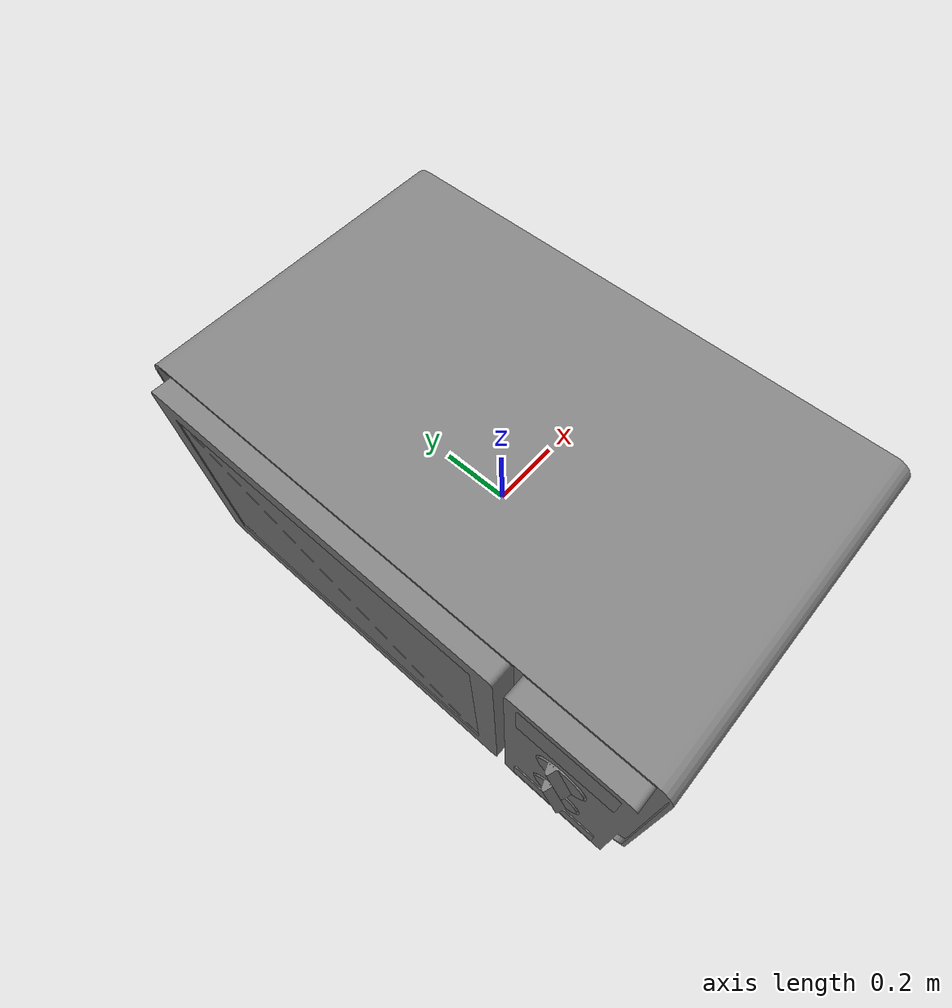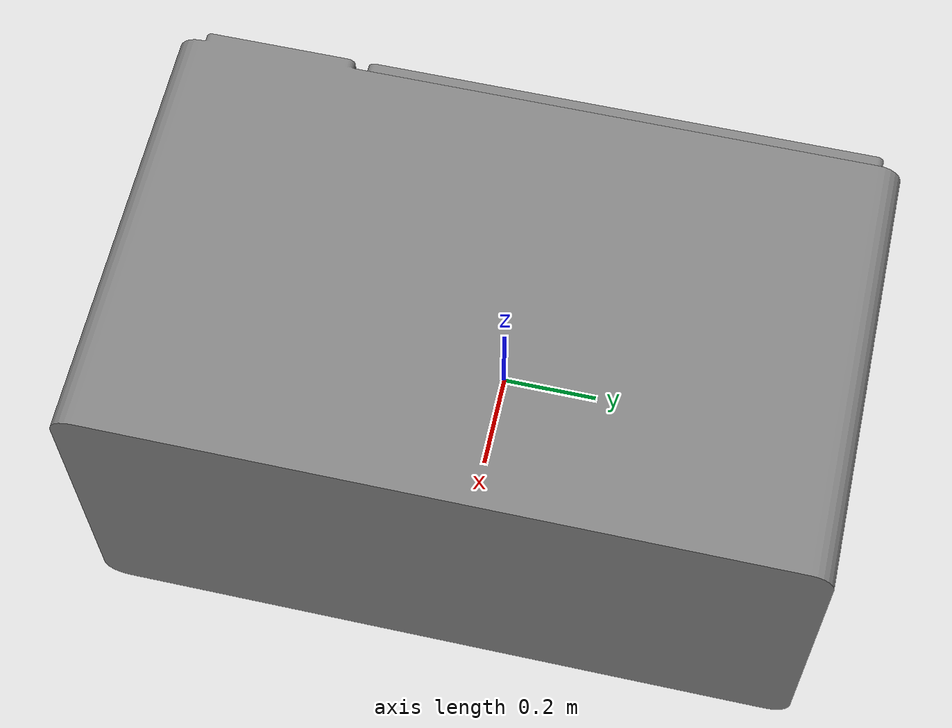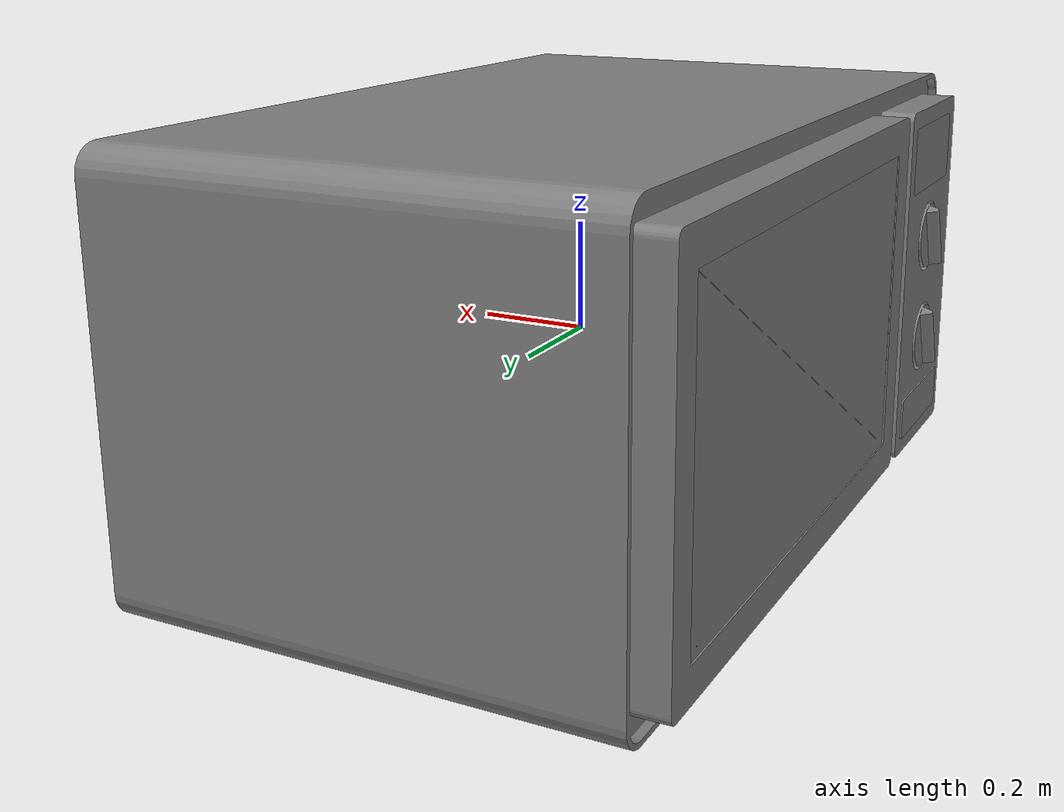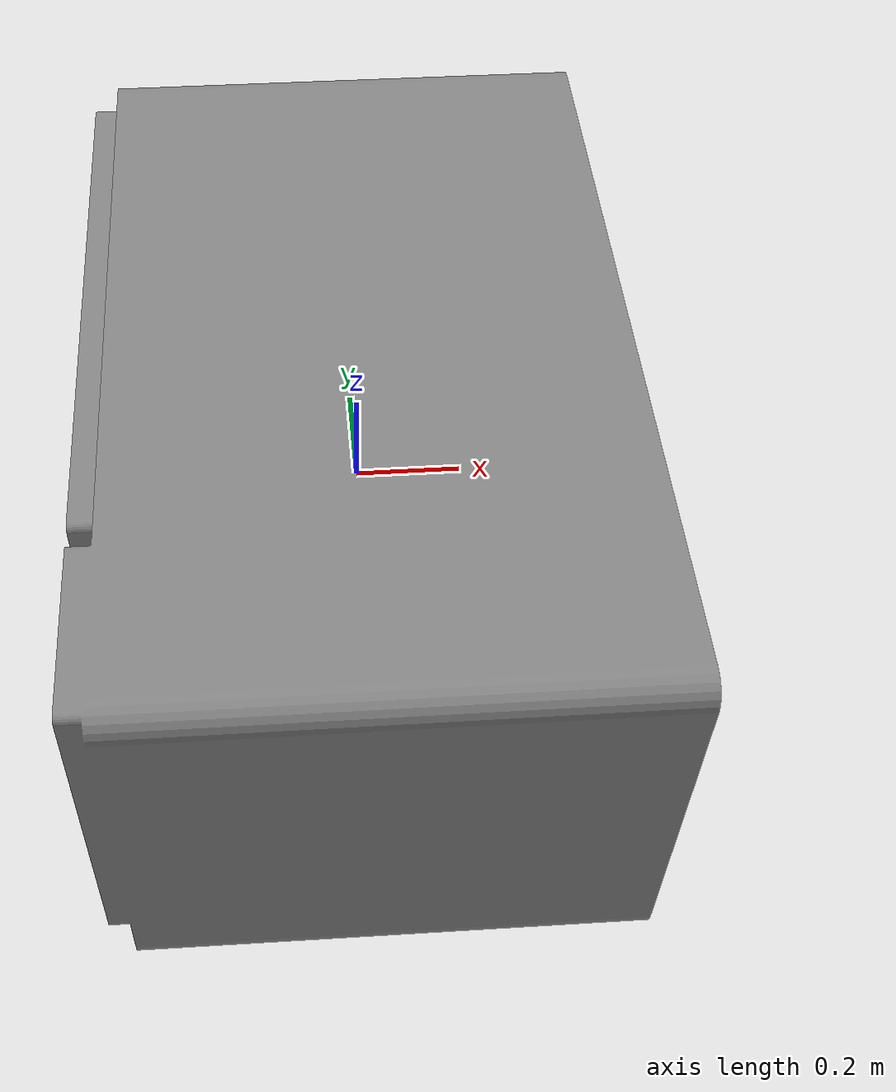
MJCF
<mujoco model="partnet_c75ebd7c340649ba5ad304c2564ae1df">
    <compiler angle="radian" />
    <size njmax="500" nconmax="100" />
    <asset>
        <mesh name="original-2" file="original-2.stl" />
        <mesh name="original-6" file="original-6.stl" />
        <mesh name="original-9" file="original-9.stl" />
        <mesh name="original-8" file="original-8.stl" />
        <mesh name="original-15" file="original-15.stl" />
        <mesh name="original-10" file="original-10.stl" />
        <mesh name="original-12" file="original-12.stl" />
        <mesh name="original-14" file="original-14.stl" />
        <mesh name="original-11" file="original-11.stl" />
        <mesh name="original-13" file="original-13.stl" />
        <mesh name="original-5" file="original-5.stl" />
        <mesh name="original-16" file="original-16.stl" />
        <mesh name="original-22" file="original-22.stl" />
        <mesh name="original-21" file="original-21.stl" />
        <mesh name="original-20" file="original-20.stl" />
        <mesh name="original-44" file="original-44.stl" />
        <mesh name="original-43" file="original-43.stl" />
        <mesh name="original-45" file="original-45.stl" />
        <mesh name="original-41" file="original-41.stl" />
        <mesh name="original-42" file="original-42.stl" />
        <mesh name="original-36" file="original-36.stl" />
        <mesh name="original-26" file="original-26.stl" />
        <mesh name="original-27" file="original-27.stl" />
        <mesh name="original-28" file="original-28.stl" />
        <mesh name="original-29" file="original-29.stl" />
        <mesh name="original-30" file="original-30.stl" />
        <mesh name="original-31" file="original-31.stl" />
        <mesh name="original-34" file="original-34.stl" />
        <mesh name="original-33" file="original-33.stl" />
        <mesh name="original-32" file="original-32.stl" />
        <mesh name="original-35" file="original-35.stl" />
        <mesh name="original-23" file="original-23.stl" />
    </asset>
    <worldbody>
    <body>
        <body name="object" >
        <geom quat="0.5 0.5 -0.5 -0.5" type="mesh" group="0" mesh="original-36" contype="0" conaffinity="0"/>
        <geom quat="0.5 0.5 -0.5 -0.5" type="mesh" group="0" mesh="original-26" contype="0" conaffinity="0"/>
        <geom quat="0.5 0.5 -0.5 -0.5" type="mesh" group="0" mesh="original-27" contype="0" conaffinity="0"/>
        <geom quat="0.5 0.5 -0.5 -0.5" type="mesh" group="0" mesh="original-28" contype="0" conaffinity="0"/>
        <geom quat="0.5 0.5 -0.5 -0.5" type="mesh" group="0" mesh="original-29" contype="0" conaffinity="0"/>
        <geom quat="0.5 0.5 -0.5 -0.5" type="mesh" group="0" mesh="original-30" contype="0" conaffinity="0"/>
        <geom quat="0.5 0.5 -0.5 -0.5" type="mesh" group="0" mesh="original-31" contype="0" conaffinity="0"/>
        <geom quat="0.5 0.5 -0.5 -0.5" type="mesh" group="0" mesh="original-34" contype="0" conaffinity="0"/>
        <geom quat="0.5 0.5 -0.5 -0.5" type="mesh" group="0" mesh="original-33" contype="0" conaffinity="0"/>
        <geom quat="0.5 0.5 -0.5 -0.5" type="mesh" group="0" mesh="original-32" contype="0" conaffinity="0"/>
        <geom quat="0.5 0.5 -0.5 -0.5" type="mesh" group="0" mesh="original-35" contype="0" conaffinity="0"/>
        <geom quat="0.5 0.5 -0.5 -0.5" type="mesh" group="0" mesh="original-23" contype="0" conaffinity="0"/>
        <body name="link_0" pos="-0.459406 0.699405 0.371674" quat="0.5 0.5 -0.5 -0.5">
            <inertial pos="0.55329 -0.349168 -0.00177987" quat="-1.3515e-05 0.707108 1.75536e-05 0.707105" mass="45.1306" diaginertia="6.75792 4.87961 1.9011" />
            <joint name="joint_0" pos="0 0 0" axis="0 -1 0" limited="true" range="0 1.5708" />
            <geom pos="0.699405 -0.371674 -0.459406" type="mesh" group="0" mesh="original-2" name="panel"/>
            <geom pos="0.699405 -0.371674 -0.459406" type="mesh" group="0" mesh="original-6" />
            <geom pos="0.699405 -0.371674 -0.459406" type="mesh" group="0" mesh="original-9" />
            <geom pos="0.699405 -0.371674 -0.459406" type="mesh" group="0" mesh="original-8" />
            <geom pos="0.699405 -0.371674 -0.459406" type="mesh" group="0" mesh="original-15" />
            <geom pos="0.699405 -0.371674 -0.459406" type="mesh" group="0" mesh="original-10" />
            <geom pos="0.699405 -0.371674 -0.459406" type="mesh" group="0" mesh="original-12" />
            <geom pos="0.699405 -0.371674 -0.459406" type="mesh" group="0" mesh="original-14" />
            <geom pos="0.699405 -0.371674 -0.459406" type="mesh" group="0" mesh="original-11" />
            <geom pos="0.699405 -0.371674 -0.459406" type="mesh" group="0" mesh="original-13" />
            <geom pos="0.699405 -0.371674 -0.459406" type="mesh" group="0" mesh="original-5" />
            <geom pos="0.699405 -0.371674 -0.459406" type="mesh" group="0" mesh="original-16" />
        </body>
        <body name="link_1" pos="0 0 0" quat="0.5 0.5 -0.5 -0.5">
            <inertial pos="0.595561 -0.253631 0.483268" quat="0 0.707107 0 0.707107" mass="0.417802" diaginertia="0.00260475 0.00238636 0.000245185" />
            <joint name="joint_1" pos="0 0 0" axis="0 0 -1" type="slide" limited="true" range="0.004 0.012" />
            <geom type="mesh" group="0" mesh="original-22" />
        </body>
        <body name="link_2" pos="0 -0.595906 -0.107629" quat="0.5 0.5 -0.5 -0.5">
            <inertial pos="3.74864e-07 -6.49769e-07 0.488314" quat="0.392849 0.587937 -0.39285 0.587935" mass="0.3382" diaginertia="0.000658839 0.00039755 0.000309341" />
            <joint name="joint_2" pos="0 0 0" axis="0 0 1" />
            <geom pos="-0.595906 0.107629 0" type="mesh" group="0" mesh="original-21" />
        </body>
        <body name="link_3" pos="0 -0.595906 0.105202" quat="0.5 0.5 -0.5 -0.5">
            <inertial pos="5.84868e-07 -4.4449e-07 0.488314" quat="0.392844 0.587941 -0.392845 0.587939" mass="0.3382" diaginertia="0.000658838 0.000397551 0.00030934" />
            <joint name="joint_3" pos="0 0 0" axis="0 0 1" />
            <geom pos="-0.595906 -0.105202 0" type="mesh" group="0" mesh="original-20" />
        </body>
        <body name="link_4" pos="0.0237996 0.149242 0" quat="0.5 0.5 -0.5 -0.5">
            <inertial pos="0.00207594 -0.260353 -0.00126455" quat="0.448501 0.546703 0.546495 0.448671" mass="17.2351" diaginertia="1.53162 0.77281 0.76889" />
            <joint name="joint_4" pos="0 0 0" axis="0 1 0" />
            <geom pos="0.149242 0 0.0237996" type="mesh" group="0" mesh="original-44" />
            <geom pos="0.149242 0 0.0237996" type="mesh" group="0" mesh="original-43" />
            <geom pos="0.149242 0 0.0237996" type="mesh" group="0" mesh="original-45" />
            <geom pos="0.149242 0 0.0237996" type="mesh" group="0" mesh="original-41" />
            <geom pos="0.149242 0 0.0237996" type="mesh" group="0" mesh="original-42" />
        </body>
        </body>
        <site name="bottom_site" pos="0 0 -0.3" rgba="0 0 0 0" size="0.005"/>
        <site name="top_site" pos="0 0 0.3" rgba="0 0 0 0" size="0.005"/>
        <site name="horizontal_radius_site" pos="0.3 0 0" rgba="0 0 0 0" size="0.1"/>
    </body>
    </worldbody>
</mujoco>
